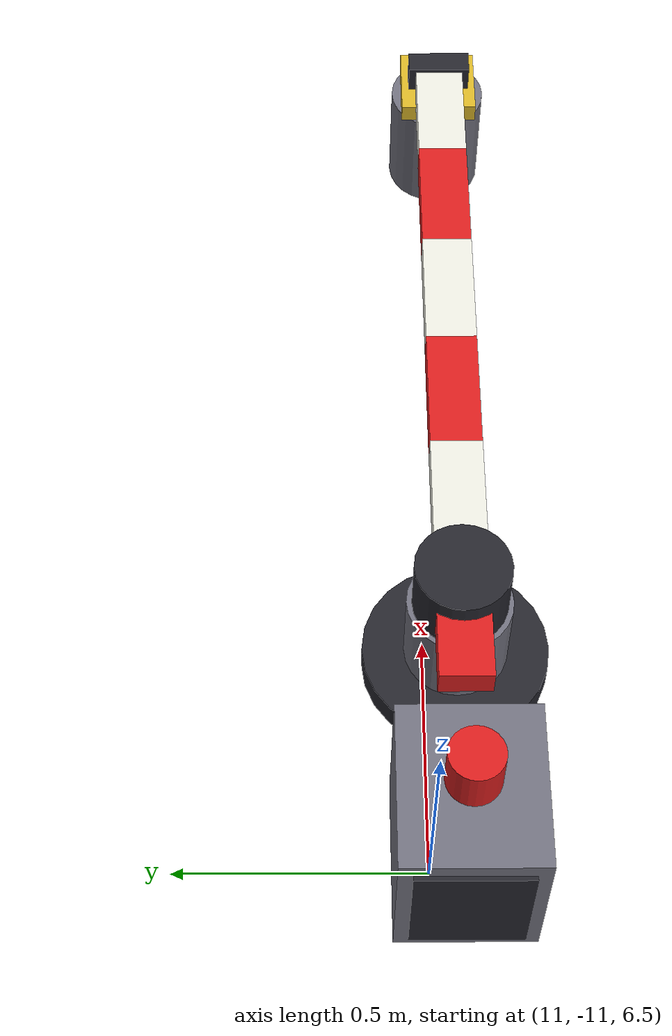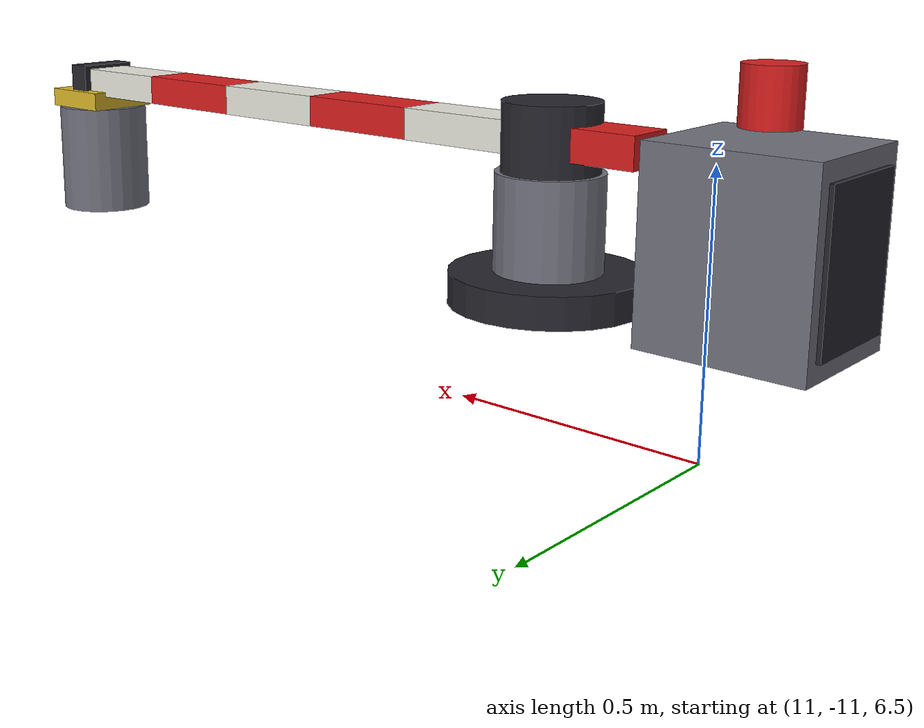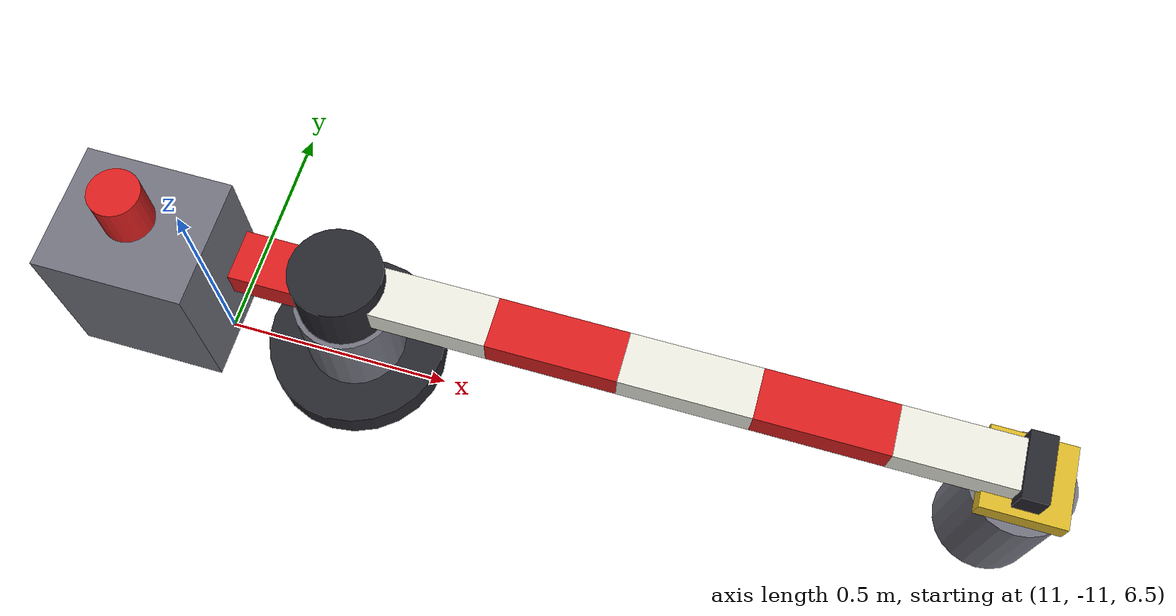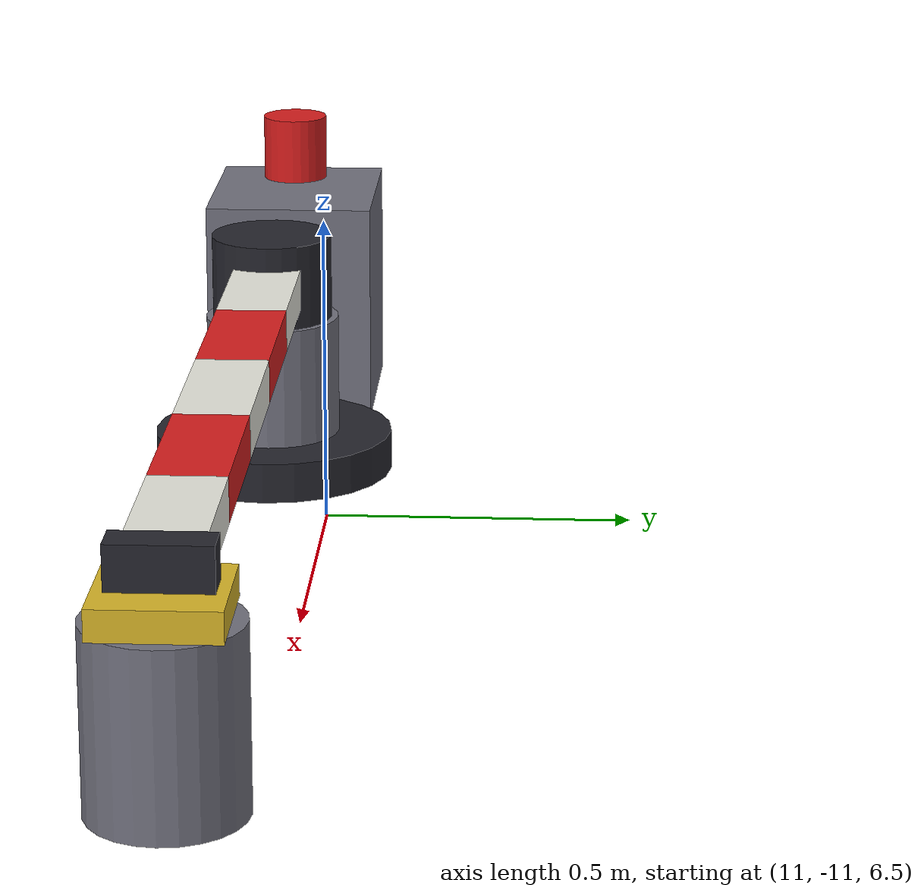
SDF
<sdf version="1.6">
 <world name="v2x_city_scene">
  <model name="ground_plane">
   <static>true</static>
   <link name="link">
    <collision name="collision">
     <geometry><plane><normal>0 0 1</normal><size>200 200</size></plane></geometry>
    </collision>
    <visual name="visual">
     <geometry><plane><normal>0 0 1</normal><size>200 200</size></plane></geometry>
     <material>
      <ambient>0.05 0.05 0.05 1</ambient>
      <diffuse>0.08 0.08 0.08 1</diffuse>
      <specular>0.0 0.0 0.0 1</specular>
     </material>
    </visual>
   </link>
  </model>
  <model name="parking_gate_in">
   <static>false</static>
   <pose>11.3500 -11.0500 6.7000 0.0000 0.0000 0.0000</pose>
   <link name="housing">
    <inertial>
     <pose>-0.4100 0.0000 0.1700 0.0000 0.0000 0.0000</pose>
     <mass>40.0000</mass>
     <inertia><ixx>0.6107</ixx><ixy>0</ixy><iyy>0.6853</iyy><ixz>0</ixz><iyz>0</iyz><izz>0.5253</izz></inertia>
    </inertial>
    <visual name="cabinet">
     <pose>-0.4100 0.0000 0.1700 0.0000 0.0000 0.0000</pose>
     <geometry><box><size>0.3000 0.2600 0.3400</size></box></geometry>
     <material>
      <ambient>0.25 0.25 0.28 1</ambient>
      <diffuse>0.45 0.45 0.50 1</diffuse>
      <specular>0 0 0 1</specular>
      <emissive>0 0 0 1</emissive>
     </material>
    </visual>
    <visual name="cabinet_door">
     <pose>-0.5630 0.0000 0.1700 0.0000 0.0000 0.0000</pose>
     <geometry><box><size>0.0100 0.2080 0.2720</size></box></geometry>
     <material>
      <ambient>0.05 0.05 0.06 1</ambient>
      <diffuse>0.15 0.15 0.18 1</diffuse>
      <specular>0 0 0 1</specular>
      <emissive>0 0 0 1</emissive>
     </material>
    </visual>
    <visual name="lamp">
     <pose>-0.4100 0.0000 0.4100 0.0000 0.0000 0.0000</pose>
     <geometry><cylinder><radius>0.0500</radius><length>0.1000</length></cylinder></geometry>
     <material>
      <ambient>0.55 0.06 0.06 1</ambient>
      <diffuse>0.86 0.12 0.12 1</diffuse>
      <specular>0 0 0 1</specular>
      <emissive>0 0 0 1</emissive>
     </material>
    </visual>
    <visual name="pivot_post">
     <pose>0.0000 0.0000 0.1200 0.0000 0.0000 0.0000</pose>
     <geometry><cylinder><radius>0.1000</radius><length>0.2400</length></cylinder></geometry>
     <material>
      <ambient>0.25 0.25 0.28 1</ambient>
      <diffuse>0.45 0.45 0.50 1</diffuse>
      <specular>0 0 0 1</specular>
      <emissive>0 0 0 1</emissive>
     </material>
    </visual>
    <visual name="pivot_base">
     <pose>0.0000 0.0000 0.0300 0.0000 0.0000 0.0000</pose>
     <geometry><cylinder><radius>0.1800</radius><length>0.0600</length></cylinder></geometry>
     <material>
      <ambient>0.05 0.05 0.06 1</ambient>
      <diffuse>0.15 0.15 0.18 1</diffuse>
      <specular>0 0 0 1</specular>
      <emissive>0 0 0 1</emissive>
     </material>
    </visual>
    <collision name="pivot_post_col">
     <pose>0.0000 0.0000 0.1200 0.0000 0.0000 0.0000</pose>
     <geometry><cylinder><radius>0.1000</radius><length>0.2400</length></cylinder></geometry>
    </collision>
    <visual name="hub">
     <pose>0.0000 0.0000 0.3000 0.0000 0.0000 0.0000</pose>
     <geometry><cylinder><radius>0.0900</radius><length>0.1320</length></cylinder></geometry>
     <material>
      <ambient>0.05 0.05 0.06 1</ambient>
      <diffuse>0.15 0.15 0.18 1</diffuse>
      <specular>0 0 0 1</specular>
      <emissive>0 0 0 1</emissive>
     </material>
    </visual>
   </link>
   <joint name="housing_world" type="fixed"><parent>world</parent><child>housing</child></joint>
   <link name="boom">
    <pose>0.0000 0.0000 0.3000 0.0000 0.0000 0.0000</pose>
    <inertial>
     <pose>0.8500 0.0000 0.0000 0.0000 0.0000 0.0000</pose>
     <mass>3.0000</mass>
     <inertia><ixx>0.0034</ixx><ixy>0</ixy><iyy>0.5634</iyy><ixz>0</ixz><iyz>0</iyz><izz>0.5650</izz></inertia>
    </inertial>
    <visual name="boom_seg0">
     <pose>-0.0750 0.0000 0.0000 0.0000 0.0000 0.0000</pose>
     <geometry><box><size>0.2500 0.1000 0.0600</size></box></geometry>
     <material>
      <ambient>0.55 0.06 0.06 1</ambient>
      <diffuse>0.86 0.12 0.12 1</diffuse>
      <specular>0 0 0 1</specular>
      <emissive>0 0 0 1</emissive>
     </material>
    </visual>
    <visual name="boom_seg1">
     <pose>0.1750 0.0000 0.0000 0.0000 0.0000 0.0000</pose>
     <geometry><box><size>0.2500 0.1000 0.0600</size></box></geometry>
     <material>
      <ambient>0.60 0.60 0.58 1</ambient>
      <diffuse>0.92 0.92 0.88 1</diffuse>
      <specular>0 0 0 1</specular>
      <emissive>0 0 0 1</emissive>
     </material>
    </visual>
    <visual name="boom_seg2">
     <pose>0.4250 0.0000 0.0000 0.0000 0.0000 0.0000</pose>
     <geometry><box><size>0.2500 0.1000 0.0600</size></box></geometry>
     <material>
      <ambient>0.55 0.06 0.06 1</ambient>
      <diffuse>0.86 0.12 0.12 1</diffuse>
      <specular>0 0 0 1</specular>
      <emissive>0 0 0 1</emissive>
     </material>
    </visual>
    <visual name="boom_seg3">
     <pose>0.6750 0.0000 0.0000 0.0000 0.0000 0.0000</pose>
     <geometry><box><size>0.2500 0.1000 0.0600</size></box></geometry>
     <material>
      <ambient>0.60 0.60 0.58 1</ambient>
      <diffuse>0.92 0.92 0.88 1</diffuse>
      <specular>0 0 0 1</specular>
      <emissive>0 0 0 1</emissive>
     </material>
    </visual>
    <visual name="boom_seg4">
     <pose>0.9250 0.0000 0.0000 0.0000 0.0000 0.0000</pose>
     <geometry><box><size>0.2500 0.1000 0.0600</size></box></geometry>
     <material>
      <ambient>0.55 0.06 0.06 1</ambient>
      <diffuse>0.86 0.12 0.12 1</diffuse>
      <specular>0 0 0 1</specular>
      <emissive>0 0 0 1</emissive>
     </material>
    </visual>
    <visual name="boom_seg5">
     <pose>1.1750 0.0000 0.0000 0.0000 0.0000 0.0000</pose>
     <geometry><box><size>0.2500 0.1000 0.0600</size></box></geometry>
     <material>
      <ambient>0.60 0.60 0.58 1</ambient>
      <diffuse>0.92 0.92 0.88 1</diffuse>
      <specular>0 0 0 1</specular>
      <emissive>0 0 0 1</emissive>
     </material>
    </visual>
    <visual name="boom_tip">
     <pose>1.3000 0.0000 -0.0100 0.0000 0.0000 0.0000</pose>
     <geometry><box><size>0.0500 0.1300 0.0960</size></box></geometry>
     <material>
      <ambient>0.05 0.05 0.06 1</ambient>
      <diffuse>0.15 0.15 0.18 1</diffuse>
      <specular>0 0 0 1</specular>
      <emissive>0 0 0 1</emissive>
     </material>
    </visual>
    <collision name="boom_col">
     <pose>0.5900 0.0000 0.0000 0.0000 0.0000 0.0000</pose>
     <geometry><box><size>1.1800 0.1000 0.0600</size></box></geometry>
    </collision>
   </link>
   <joint name="boom_joint" type="revolute">
    <parent>housing</parent>
    <child>boom</child>
    <axis>
     <xyz>0.0000 -1.0000 0.0000</xyz>
     <use_parent_model_frame>true</use_parent_model_frame>
     <limit><lower>0.0000</lower><upper>1.5708</upper><effort>300.0000</effort><velocity>2.0000</velocity></limit>
     <dynamics><damping>0.1000</damping><friction>0.0500</friction></dynamics>
    </axis>
   </joint>
   <plugin name="v2x_barrier" filename="libv2x_barrier.so">
    <gate_id>gate_in</gate_id>
    <joint_name>boom_joint</joint_name>
    <boom_link>boom</boom_link>
    <cmd_topic>/parking/gate/gate_in/cmd</cmd_topic>
    <state_topic>/parking/gate/gate_in/state</state_topic>
    <fault_topic>/parking/fault_inject</fault_topic>
    <state_rate>20.0000</state_rate>
    <open_angle>1.5708</open_angle>
    <closed_angle>0.0000</closed_angle>
    <angle_tolerance>0.0800</angle_tolerance>
    <p_gain>50.0000</p_gain>
    <d_gain>5.0000</d_gain>
    <raise_timeout_s>5.0000</raise_timeout_s>
    <lower_timeout_s>5.0000</lower_timeout_s>
    <effort_limit>300.0000</effort_limit>
    <jam_effort_ratio>0.9000</jam_effort_ratio>
    <gravity_comp>true</gravity_comp>
    <loop_id>PKG-in-loop</loop_id>
    <loop_center>12.0000 -10.9000 6.7000</loop_center>
    <loop_size>1.3000 1.1000 0.1</loop_size>
    <vehicle_length>1.6000</vehicle_length>
    <vehicle_width>0.8000</vehicle_width>
    <vehicle_prefix>car_</vehicle_prefix>
    <chassis_link>chassis</chassis_link>
   </plugin>
  </model>
  <model name="parking_gate_in_receiver">
   <static>true</static>
   <pose>12.6500 -11.0500 6.7000 0.0000 0.0000 0.0000</pose>
   <link name="link">
    <visual name="post">
     <pose>0.0000 0.0000 0.1200 0.0000 0.0000 0.0000</pose>
     <geometry><cylinder><radius>0.1000</radius><length>0.2400</length></cylinder></geometry>
     <material>
      <ambient>0.25 0.25 0.28 1</ambient>
      <diffuse>0.45 0.45 0.50 1</diffuse>
      <specular>0 0 0 1</specular>
      <emissive>0 0 0 1</emissive>
     </material>
    </visual>
    <visual name="cap">
     <pose>0.0000 0.0000 0.2600 0.0000 0.0000 0.0000</pose>
     <geometry><box><size>0.1600 0.1600 0.0400</size></box></geometry>
     <material>
      <ambient>0.55 0.46 0.10 1</ambient>
      <diffuse>0.86 0.72 0.16 1</diffuse>
      <specular>0 0 0 1</specular>
      <emissive>0 0 0 1</emissive>
     </material>
    </visual>
    <collision name="post_col">
     <pose>0.0000 0.0000 0.1200 0.0000 0.0000 0.0000</pose>
     <geometry><cylinder><radius>0.1000</radius><length>0.2400</length></cylinder></geometry>
    </collision>
   </link>
  </model>
 </world>
</sdf>
